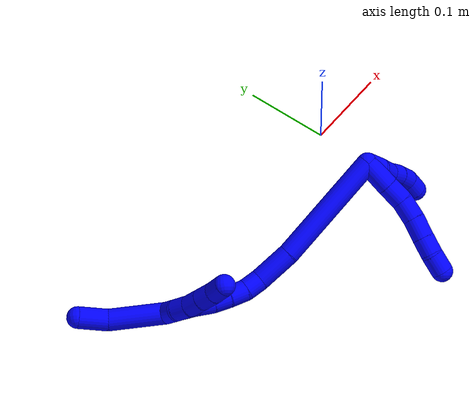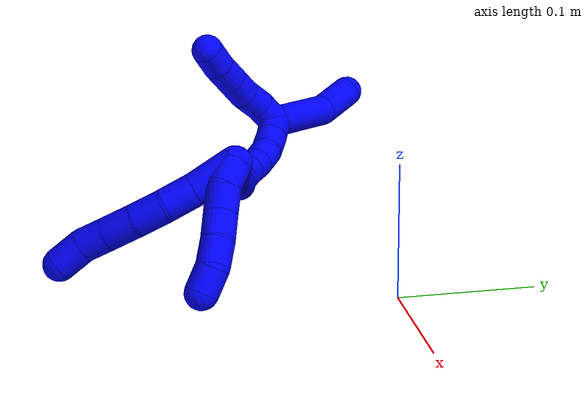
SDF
<sdf version="1.7">
 <world name="default">
  <model name="1">
   <static>0</static>
   <link name="1">
    <collision name="collision-cylinder-e_1_2_8">
     <pose>0.008142 -0.007745 0.013165 0.531779 0.489731 0.135894</pose>
     <geometry><cylinder><radius>0.0125</radius><length>0.034618</length></cylinder></geometry>
     <surface>
      <friction><ode><mu>1.16</mu><mu2>1.16</mu2><slip1>0</slip1><slip2>0</slip2></ode></friction>
      <contact><ode><kp>1e+06</kp><kd>1</kd><max_vel>0</max_vel><min_depth>0.001</min_depth></ode></contact>
     </surface>
    </collision>
    <visual name="visual-cylinder-e_1_2_8">
     <pose>0.008142 -0.007745 0.013165 0.531779 0.489731 0.135894</pose>
     <geometry><cylinder><radius>0.0125</radius><length>0.034618</length></cylinder></geometry>
     <material><ambient>0 0 1 1</ambient></material>
    </visual>
    <collision name="collision-cylinder-e_2_8_9">
     <pose>0.022457 -0.019949 0.035385 0.45761 0.548904 0.130952</pose>
     <geometry><cylinder><radius>0.0125</radius><length>0.023662</length></cylinder></geometry>
     <surface>
      <friction><ode><mu>1.16</mu><mu2>1.16</mu2><slip1>0</slip1><slip2>0</slip2></ode></friction>
      <contact><ode><kp>1e+06</kp><kd>1</kd><max_vel>0</max_vel><min_depth>0.001</min_depth></ode></contact>
     </surface>
    </collision>
    <visual name="visual-cylinder-e_2_8_9">
     <pose>0.022457 -0.019949 0.035385 0.45761 0.548904 0.130952</pose>
     <geometry><cylinder><radius>0.0125</radius><length>0.023662</length></cylinder></geometry>
     <material><ambient>0 0 1 1</ambient></material>
    </visual>
    <collision name="collision-cylinder-e_3_9_10">
     <pose>0.032946 -0.027941 0.05485 0.327095 0.37415 0.062453</pose>
     <geometry><cylinder><radius>0.0125</radius><length>0.023623</length></cylinder></geometry>
     <surface>
      <friction><ode><mu>1.16</mu><mu2>1.16</mu2><slip1>0</slip1><slip2>0</slip2></ode></friction>
      <contact><ode><kp>1e+06</kp><kd>1</kd><max_vel>0</max_vel><min_depth>0.001</min_depth></ode></contact>
     </surface>
    </collision>
    <visual name="visual-cylinder-e_3_9_10">
     <pose>0.032946 -0.027941 0.05485 0.327095 0.37415 0.062453</pose>
     <geometry><cylinder><radius>0.0125</radius><length>0.023623</length></cylinder></geometry>
     <material><ambient>0 0 1 1</ambient></material>
    </visual>
    <collision name="collision-cylinder-e_4_10_11">
     <pose>0.040623 -0.034511 0.076657 0.260489 0.277591 0.036592</pose>
     <geometry><cylinder><radius>0.0125</radius><length>0.024525</length></cylinder></geometry>
     <surface>
      <friction><ode><mu>1.16</mu><mu2>1.16</mu2><slip1>0</slip1><slip2>0</slip2></ode></friction>
      <contact><ode><kp>1e+06</kp><kd>1</kd><max_vel>0</max_vel><min_depth>0.001</min_depth></ode></contact>
     </surface>
    </collision>
    <visual name="visual-cylinder-e_4_10_11">
     <pose>0.040623 -0.034511 0.076657 0.260489 0.277591 0.036592</pose>
     <geometry><cylinder><radius>0.0125</radius><length>0.024525</length></cylinder></geometry>
     <material><ambient>0 0 1 1</ambient></material>
    </visual>
    <collision name="collision-cylinder-e_5_11_12">
     <pose>0.047111 -0.040122 0.097703 0.260688 0.303367 0.04007</pose>
     <geometry><cylinder><radius>0.0125</radius><length>0.020933</length></cylinder></geometry>
     <surface>
      <friction><ode><mu>1.16</mu><mu2>1.16</mu2><slip1>0</slip1><slip2>0</slip2></ode></friction>
      <contact><ode><kp>1e+06</kp><kd>1</kd><max_vel>0</max_vel><min_depth>0.001</min_depth></ode></contact>
     </surface>
    </collision>
    <visual name="visual-cylinder-e_5_11_12">
     <pose>0.047111 -0.040122 0.097703 0.260688 0.303367 0.04007</pose>
     <geometry><cylinder><radius>0.0125</radius><length>0.020933</length></cylinder></geometry>
     <material><ambient>0 0 1 1</ambient></material>
    </visual>
    <collision name="collision-cylinder-e_6_12_6">
     <pose>0.053522 -0.048153 0.116713 0.52787 0.29439 0.080092</pose>
     <geometry><cylinder><radius>0.0125</radius><length>0.02264</length></cylinder></geometry>
     <surface>
      <friction><ode><mu>1.16</mu><mu2>1.16</mu2><slip1>0</slip1><slip2>0</slip2></ode></friction>
      <contact><ode><kp>1e+06</kp><kd>1</kd><max_vel>0</max_vel><min_depth>0.001</min_depth></ode></contact>
     </surface>
    </collision>
    <visual name="visual-cylinder-e_6_12_6">
     <pose>0.053522 -0.048153 0.116713 0.52787 0.29439 0.080092</pose>
     <geometry><cylinder><radius>0.0125</radius><length>0.02264</length></cylinder></geometry>
     <material><ambient>0 0 1 1</ambient></material>
    </visual>
    <collision name="collision-cylinder-e_1_2_13">
     <pose>0.004697 -0.008522 0.002306 1.30657 0.488906 0.377306</pose>
     <geometry><cylinder><radius>0.0125</radius><length>0.02</length></cylinder></geometry>
     <surface>
      <friction><ode><mu>1.16</mu><mu2>1.16</mu2><slip1>0</slip1><slip2>0</slip2></ode></friction>
      <contact><ode><kp>1e+06</kp><kd>1</kd><max_vel>0</max_vel><min_depth>0.001</min_depth></ode></contact>
     </surface>
    </collision>
    <visual name="visual-cylinder-e_1_2_13">
     <pose>0.004697 -0.008522 0.002306 1.30657 0.488906 0.377306</pose>
     <geometry><cylinder><radius>0.0125</radius><length>0.02</length></cylinder></geometry>
     <material><ambient>0 0 1 1</ambient></material>
    </visual>
    <collision name="collision-cylinder-e_2_13_14">
     <pose>0.011423 -0.026778 0.00568 1.46144 0.204358 0.183273</pose>
     <geometry><cylinder><radius>0.0125</radius><length>0.02</length></cylinder></geometry>
     <surface>
      <friction><ode><mu>1.16</mu><mu2>1.16</mu2><slip1>0</slip1><slip2>0</slip2></ode></friction>
      <contact><ode><kp>1e+06</kp><kd>1</kd><max_vel>0</max_vel><min_depth>0.001</min_depth></ode></contact>
     </surface>
    </collision>
    <visual name="visual-cylinder-e_2_13_14">
     <pose>0.011423 -0.026778 0.00568 1.46144 0.204358 0.183273</pose>
     <geometry><cylinder><radius>0.0125</radius><length>0.02</length></cylinder></geometry>
     <material><ambient>0 0 1 1</ambient></material>
    </visual>
    <collision name="collision-cylinder-e_3_14_15">
     <pose>0.016381 -0.046072 0.006686 1.5773 0.297266 0.299178</pose>
     <geometry><cylinder><radius>0.0125</radius><length>0.02</length></cylinder></geometry>
     <surface>
      <friction><ode><mu>1.16</mu><mu2>1.16</mu2><slip1>0</slip1><slip2>0</slip2></ode></friction>
      <contact><ode><kp>1e+06</kp><kd>1</kd><max_vel>0</max_vel><min_depth>0.001</min_depth></ode></contact>
     </surface>
    </collision>
    <visual name="visual-cylinder-e_3_14_15">
     <pose>0.016381 -0.046072 0.006686 1.5773 0.297266 0.299178</pose>
     <geometry><cylinder><radius>0.0125</radius><length>0.02</length></cylinder></geometry>
     <material><ambient>0 0 1 1</ambient></material>
    </visual>
    <collision name="collision-cylinder-e_4_15_16">
     <pose>0.021991 -0.065181 0.007912 1.43673 0.271403 0.237597</pose>
     <geometry><cylinder><radius>0.0125</radius><length>0.02</length></cylinder></geometry>
     <surface>
      <friction><ode><mu>1.16</mu><mu2>1.16</mu2><slip1>0</slip1><slip2>0</slip2></ode></friction>
      <contact><ode><kp>1e+06</kp><kd>1</kd><max_vel>0</max_vel><min_depth>0.001</min_depth></ode></contact>
     </surface>
    </collision>
    <visual name="visual-cylinder-e_4_15_16">
     <pose>0.021991 -0.065181 0.007912 1.43673 0.271403 0.237597</pose>
     <geometry><cylinder><radius>0.0125</radius><length>0.02</length></cylinder></geometry>
     <material><ambient>0 0 1 1</ambient></material>
    </visual>
    <collision name="collision-cylinder-e_5_16_5">
     <pose>0.026846 -0.08337 0.013738 1.08727 0.21915 0.132787</pose>
     <geometry><cylinder><radius>0.0125</radius><length>0.02</length></cylinder></geometry>
     <surface>
      <friction><ode><mu>1.16</mu><mu2>1.16</mu2><slip1>0</slip1><slip2>0</slip2></ode></friction>
      <contact><ode><kp>1e+06</kp><kd>1</kd><max_vel>0</max_vel><min_depth>0.001</min_depth></ode></contact>
     </surface>
    </collision>
    <visual name="visual-cylinder-e_5_16_5">
     <pose>0.026846 -0.08337 0.013738 1.08727 0.21915 0.132787</pose>
     <geometry><cylinder><radius>0.0125</radius><length>0.02</length></cylinder></geometry>
     <material><ambient>0 0 1 1</ambient></material>
    </visual>
    <collision name="collision-cylinder-e_1_2_17">
     <pose>-0.05036 0.006671 0.044685 -0.148199 -0.839562 0.06624</pose>
     <geometry><cylinder><radius>0.0125</radius><length>0.135314</length></cylinder></geometry>
     <surface>
      <friction><ode><mu>1.16</mu><mu2>1.16</mu2><slip1>0</slip1><slip2>0</slip2></ode></friction>
      <contact><ode><kp>1e+06</kp><kd>1</kd><max_vel>0</max_vel><min_depth>0.001</min_depth></ode></contact>
     </surface>
    </collision>
    <visual name="visual-cylinder-e_1_2_17">
     <pose>-0.05036 0.006671 0.044685 -0.148199 -0.839562 0.06624</pose>
     <geometry><cylinder><radius>0.0125</radius><length>0.135314</length></cylinder></geometry>
     <material><ambient>0 0 1 1</ambient></material>
    </visual>
    <collision name="collision-cylinder-e_2_17_18">
     <pose>-0.118841 0.015495 0.101624 -0.173911 -0.969129 0.091718</pose>
     <geometry><cylinder><radius>0.0125</radius><length>0.043961</length></cylinder></geometry>
     <surface>
      <friction><ode><mu>1.16</mu><mu2>1.16</mu2><slip1>0</slip1><slip2>0</slip2></ode></friction>
      <contact><ode><kp>1e+06</kp><kd>1</kd><max_vel>0</max_vel><min_depth>0.001</min_depth></ode></contact>
     </surface>
    </collision>
    <visual name="visual-cylinder-e_2_17_18">
     <pose>-0.118841 0.015495 0.101624 -0.173911 -0.969129 0.091718</pose>
     <geometry><cylinder><radius>0.0125</radius><length>0.043961</length></cylinder></geometry>
     <material><ambient>0 0 1 1</ambient></material>
    </visual>
    <collision name="collision-cylinder-e_3_18_19">
     <pose>-0.144785 0.021748 0.119223 -0.654344 -0.859893 0.308762</pose>
     <geometry><cylinder><radius>0.0125</radius><length>0.02065</length></cylinder></geometry>
     <surface>
      <friction><ode><mu>1.16</mu><mu2>1.16</mu2><slip1>0</slip1><slip2>0</slip2></ode></friction>
      <contact><ode><kp>1e+06</kp><kd>1</kd><max_vel>0</max_vel><min_depth>0.001</min_depth></ode></contact>
     </surface>
    </collision>
    <visual name="visual-cylinder-e_3_18_19">
     <pose>-0.144785 0.021748 0.119223 -0.654344 -0.859893 0.308762</pose>
     <geometry><cylinder><radius>0.0125</radius><length>0.02065</length></cylinder></geometry>
     <material><ambient>0 0 1 1</ambient></material>
    </visual>
    <collision name="collision-cylinder-e_4_19_20">
     <pose>-0.161029 0.030395 0.127589 -0.984343 -0.995697 0.567135</pose>
     <geometry><cylinder><radius>0.0125</radius><length>0.020067</length></cylinder></geometry>
     <surface>
      <friction><ode><mu>1.16</mu><mu2>1.16</mu2><slip1>0</slip1><slip2>0</slip2></ode></friction>
      <contact><ode><kp>1e+06</kp><kd>1</kd><max_vel>0</max_vel><min_depth>0.001</min_depth></ode></contact>
     </surface>
    </collision>
    <visual name="visual-cylinder-e_4_19_20">
     <pose>-0.161029 0.030395 0.127589 -0.984343 -0.995697 0.567135</pose>
     <geometry><cylinder><radius>0.0125</radius><length>0.020067</length></cylinder></geometry>
     <material><ambient>0 0 1 1</ambient></material>
    </visual>
    <collision name="collision-cylinder-e_5_20_21">
     <pose>-0.178218 0.039121 0.132991 -1.053 -1.06896 0.662746</pose>
     <geometry><cylinder><radius>0.0125</radius><length>0.020006</length></cylinder></geometry>
     <surface>
      <friction><ode><mu>1.16</mu><mu2>1.16</mu2><slip1>0</slip1><slip2>0</slip2></ode></friction>
      <contact><ode><kp>1e+06</kp><kd>1</kd><max_vel>0</max_vel><min_depth>0.001</min_depth></ode></contact>
     </surface>
    </collision>
    <visual name="visual-cylinder-e_5_20_21">
     <pose>-0.178218 0.039121 0.132991 -1.053 -1.06896 0.662746</pose>
     <geometry><cylinder><radius>0.0125</radius><length>0.020006</length></cylinder></geometry>
     <material><ambient>0 0 1 1</ambient></material>
    </visual>
    <collision name="collision-cylinder-e_6_21_22">
     <pose>-0.195034 0.049125 0.136546 -1.37195 -0.934903 0.783659</pose>
     <geometry><cylinder><radius>0.0125</radius><length>0.020002</length></cylinder></geometry>
     <surface>
      <friction><ode><mu>1.16</mu><mu2>1.16</mu2><slip1>0</slip1><slip2>0</slip2></ode></friction>
      <contact><ode><kp>1e+06</kp><kd>1</kd><max_vel>0</max_vel><min_depth>0.001</min_depth></ode></contact>
     </surface>
    </collision>
    <visual name="visual-cylinder-e_6_21_22">
     <pose>-0.195034 0.049125 0.136546 -1.37195 -0.934903 0.783659</pose>
     <geometry><cylinder><radius>0.0125</radius><length>0.020002</length></cylinder></geometry>
     <material><ambient>0 0 1 1</ambient></material>
    </visual>
    <collision name="collision-cylinder-e_7_22_23">
     <pose>-0.209868 0.061987 0.13981 -1.28203 -0.746102 0.568229</pose>
     <geometry><cylinder><radius>0.0125</radius><length>0.020001</length></cylinder></geometry>
     <surface>
      <friction><ode><mu>1.16</mu><mu2>1.16</mu2><slip1>0</slip1><slip2>0</slip2></ode></friction>
      <contact><ode><kp>1e+06</kp><kd>1</kd><max_vel>0</max_vel><min_depth>0.001</min_depth></ode></contact>
     </surface>
    </collision>
    <visual name="visual-cylinder-e_7_22_23">
     <pose>-0.209868 0.061987 0.13981 -1.28203 -0.746102 0.568229</pose>
     <geometry><cylinder><radius>0.0125</radius><length>0.020001</length></cylinder></geometry>
     <material><ambient>0 0 1 1</ambient></material>
    </visual>
    <collision name="collision-cylinder-e_8_23_1">
     <pose>-0.222887 0.076489 0.144246 -1.26639 -0.672635 0.502384</pose>
     <geometry><cylinder><radius>0.0125</radius><length>0.02</length></cylinder></geometry>
     <surface>
      <friction><ode><mu>1.16</mu><mu2>1.16</mu2><slip1>0</slip1><slip2>0</slip2></ode></friction>
      <contact><ode><kp>1e+06</kp><kd>1</kd><max_vel>0</max_vel><min_depth>0.001</min_depth></ode></contact>
     </surface>
    </collision>
    <visual name="visual-cylinder-e_8_23_1">
     <pose>-0.222887 0.076489 0.144246 -1.26639 -0.672635 0.502384</pose>
     <geometry><cylinder><radius>0.0125</radius><length>0.02</length></cylinder></geometry>
     <material><ambient>0 0 1 1</ambient></material>
    </visual>
    <collision name="collision-cylinder-e_1_1_24">
     <pose>-0.221178 0.089996 0.147246 -1.46277 0.917205 -0.83414</pose>
     <geometry><cylinder><radius>0.0125</radius><length>0.02</length></cylinder></geometry>
     <surface>
      <friction><ode><mu>1.16</mu><mu2>1.16</mu2><slip1>0</slip1><slip2>0</slip2></ode></friction>
      <contact><ode><kp>1e+06</kp><kd>1</kd><max_vel>0</max_vel><min_depth>0.001</min_depth></ode></contact>
     </surface>
    </collision>
    <visual name="visual-cylinder-e_1_1_24">
     <pose>-0.221178 0.089996 0.147246 -1.46277 0.917205 -0.83414</pose>
     <geometry><cylinder><radius>0.0125</radius><length>0.02</length></cylinder></geometry>
     <material><ambient>0 0 1 1</ambient></material>
    </visual>
    <collision name="collision-cylinder-e_2_24_25">
     <pose>-0.20401 0.099888 0.14778 -1.60252 1.17568 -1.20514</pose>
     <geometry><cylinder><radius>0.0125</radius><length>0.02</length></cylinder></geometry>
     <surface>
      <friction><ode><mu>1.16</mu><mu2>1.16</mu2><slip1>0</slip1><slip2>0</slip2></ode></friction>
      <contact><ode><kp>1e+06</kp><kd>1</kd><max_vel>0</max_vel><min_depth>0.001</min_depth></ode></contact>
     </surface>
    </collision>
    <visual name="visual-cylinder-e_2_24_25">
     <pose>-0.20401 0.099888 0.14778 -1.60252 1.17568 -1.20514</pose>
     <geometry><cylinder><radius>0.0125</radius><length>0.02</length></cylinder></geometry>
     <material><ambient>0 0 1 1</ambient></material>
    </visual>
    <collision name="collision-cylinder-e_3_25_26">
     <pose>-0.185964 0.108213 0.146169 -1.89167 1.07939 -1.38591</pose>
     <geometry><cylinder><radius>0.0125</radius><length>0.02</length></cylinder></geometry>
     <surface>
      <friction><ode><mu>1.16</mu><mu2>1.16</mu2><slip1>0</slip1><slip2>0</slip2></ode></friction>
      <contact><ode><kp>1e+06</kp><kd>1</kd><max_vel>0</max_vel><min_depth>0.001</min_depth></ode></contact>
     </surface>
    </collision>
    <visual name="visual-cylinder-e_3_25_26">
     <pose>-0.185964 0.108213 0.146169 -1.89167 1.07939 -1.38591</pose>
     <geometry><cylinder><radius>0.0125</radius><length>0.02</length></cylinder></geometry>
     <material><ambient>0 0 1 1</ambient></material>
    </visual>
    <collision name="collision-cylinder-e_4_26_27">
     <pose>-0.168254 0.116975 0.14308 -1.92839 1.09584 -1.44272</pose>
     <geometry><cylinder><radius>0.0125</radius><length>0.02</length></cylinder></geometry>
     <surface>
      <friction><ode><mu>1.16</mu><mu2>1.16</mu2><slip1>0</slip1><slip2>0</slip2></ode></friction>
      <contact><ode><kp>1e+06</kp><kd>1</kd><max_vel>0</max_vel><min_depth>0.001</min_depth></ode></contact>
     </surface>
    </collision>
    <visual name="visual-cylinder-e_4_26_27">
     <pose>-0.168254 0.116975 0.14308 -1.92839 1.09584 -1.44272</pose>
     <geometry><cylinder><radius>0.0125</radius><length>0.02</length></cylinder></geometry>
     <material><ambient>0 0 1 1</ambient></material>
    </visual>
    <collision name="collision-cylinder-e_5_27_4">
     <pose>-0.151156 0.126661 0.13961 -1.90404 0.962269 -1.26527</pose>
     <geometry><cylinder><radius>0.0125</radius><length>0.02</length></cylinder></geometry>
     <surface>
      <friction><ode><mu>1.16</mu><mu2>1.16</mu2><slip1>0</slip1><slip2>0</slip2></ode></friction>
      <contact><ode><kp>1e+06</kp><kd>1</kd><max_vel>0</max_vel><min_depth>0.001</min_depth></ode></contact>
     </surface>
    </collision>
    <visual name="visual-cylinder-e_5_27_4">
     <pose>-0.151156 0.126661 0.13961 -1.90404 0.962269 -1.26527</pose>
     <geometry><cylinder><radius>0.0125</radius><length>0.02</length></cylinder></geometry>
     <material><ambient>0 0 1 1</ambient></material>
    </visual>
    <collision name="collision-cylinder-e_1_1_28">
     <pose>-0.260824 0.09193 0.146333 -1.60304 -1.32413 1.35552</pose>
     <geometry><cylinder><radius>0.0125</radius><length>0.065392</length></cylinder></geometry>
     <surface>
      <friction><ode><mu>1.16</mu><mu2>1.16</mu2><slip1>0</slip1><slip2>0</slip2></ode></friction>
      <contact><ode><kp>1e+06</kp><kd>1</kd><max_vel>0</max_vel><min_depth>0.001</min_depth></ode></contact>
     </surface>
    </collision>
    <visual name="visual-cylinder-e_1_1_28">
     <pose>-0.260824 0.09193 0.146333 -1.60304 -1.32413 1.35552</pose>
     <geometry><cylinder><radius>0.0125</radius><length>0.065392</length></cylinder></geometry>
     <material><ambient>0 0 1 1</ambient></material>
    </visual>
    <collision name="collision-cylinder-e_2_28_3">
     <pose>-0.307065 0.108931 0.143473 -1.85171 -0.997201 1.25306</pose>
     <geometry><cylinder><radius>0.0125</radius><length>0.034608</length></cylinder></geometry>
     <surface>
      <friction><ode><mu>1.16</mu><mu2>1.16</mu2><slip1>0</slip1><slip2>0</slip2></ode></friction>
      <contact><ode><kp>1e+06</kp><kd>1</kd><max_vel>0</max_vel><min_depth>0.001</min_depth></ode></contact>
     </surface>
    </collision>
    <visual name="visual-cylinder-e_2_28_3">
     <pose>-0.307065 0.108931 0.143473 -1.85171 -0.997201 1.25306</pose>
     <geometry><cylinder><radius>0.0125</radius><length>0.034608</length></cylinder></geometry>
     <material><ambient>0 0 1 1</ambient></material>
    </visual>
    <collision name="collision-sphere-3">
     <pose>-0.321599 0.117954 0.140869 0 -0 0</pose>
     <geometry><sphere><radius>0.0125</radius></sphere></geometry>
     <surface>
      <friction><ode><mu>1.16</mu><mu2>1.16</mu2><slip1>0</slip1><slip2>0</slip2></ode></friction>
      <contact><ode><kp>1e+06</kp><kd>1</kd><max_vel>0</max_vel><min_depth>0.001</min_depth></ode></contact>
     </surface>
    </collision>
    <visual name="visual-sphere-3">
     <pose>-0.321599 0.117954 0.140869 0 -0 0</pose>
     <geometry><sphere><radius>0.0125</radius></sphere></geometry>
     <material><ambient>0 0 1 1</ambient></material>
    </visual>
    <collision name="collision-sphere-28">
     <pose>-0.29253 0.099909 0.146076 0 -0 0</pose>
     <geometry><sphere><radius>0.0125</radius></sphere></geometry>
     <surface>
      <friction><ode><mu>1.16</mu><mu2>1.16</mu2><slip1>0</slip1><slip2>0</slip2></ode></friction>
      <contact><ode><kp>1e+06</kp><kd>1</kd><max_vel>0</max_vel><min_depth>0.001</min_depth></ode></contact>
     </surface>
    </collision>
    <visual name="visual-sphere-28">
     <pose>-0.29253 0.099909 0.146076 0 -0 0</pose>
     <geometry><sphere><radius>0.0125</radius></sphere></geometry>
     <material><ambient>0 0 1 1</ambient></material>
    </visual>
    <collision name="collision-sphere-4">
     <pose>-0.142951 0.132063 0.13774 0 -0 0</pose>
     <geometry><sphere><radius>0.0125</radius></sphere></geometry>
     <surface>
      <friction><ode><mu>1.16</mu><mu2>1.16</mu2><slip1>0</slip1><slip2>0</slip2></ode></friction>
      <contact><ode><kp>1e+06</kp><kd>1</kd><max_vel>0</max_vel><min_depth>0.001</min_depth></ode></contact>
     </surface>
    </collision>
    <visual name="visual-sphere-4">
     <pose>-0.142951 0.132063 0.13774 0 -0 0</pose>
     <geometry><sphere><radius>0.0125</radius></sphere></geometry>
     <material><ambient>0 0 1 1</ambient></material>
    </visual>
    <collision name="collision-sphere-27">
     <pose>-0.159361 0.121258 0.14148 0 -0 0</pose>
     <geometry><sphere><radius>0.0125</radius></sphere></geometry>
     <surface>
      <friction><ode><mu>1.16</mu><mu2>1.16</mu2><slip1>0</slip1><slip2>0</slip2></ode></friction>
      <contact><ode><kp>1e+06</kp><kd>1</kd><max_vel>0</max_vel><min_depth>0.001</min_depth></ode></contact>
     </surface>
    </collision>
    <visual name="visual-sphere-27">
     <pose>-0.159361 0.121258 0.14148 0 -0 0</pose>
     <geometry><sphere><radius>0.0125</radius></sphere></geometry>
     <material><ambient>0 0 1 1</ambient></material>
    </visual>
    <collision name="collision-sphere-26">
     <pose>-0.177147 0.112691 0.144681 0 -0 0</pose>
     <geometry><sphere><radius>0.0125</radius></sphere></geometry>
     <surface>
      <friction><ode><mu>1.16</mu><mu2>1.16</mu2><slip1>0</slip1><slip2>0</slip2></ode></friction>
      <contact><ode><kp>1e+06</kp><kd>1</kd><max_vel>0</max_vel><min_depth>0.001</min_depth></ode></contact>
     </surface>
    </collision>
    <visual name="visual-sphere-26">
     <pose>-0.177147 0.112691 0.144681 0 -0 0</pose>
     <geometry><sphere><radius>0.0125</radius></sphere></geometry>
     <material><ambient>0 0 1 1</ambient></material>
    </visual>
    <collision name="collision-sphere-25">
     <pose>-0.19478 0.103735 0.147657 0 -0 0</pose>
     <geometry><sphere><radius>0.0125</radius></sphere></geometry>
     <surface>
      <friction><ode><mu>1.16</mu><mu2>1.16</mu2><slip1>0</slip1><slip2>0</slip2></ode></friction>
      <contact><ode><kp>1e+06</kp><kd>1</kd><max_vel>0</max_vel><min_depth>0.001</min_depth></ode></contact>
     </surface>
    </collision>
    <visual name="visual-sphere-25">
     <pose>-0.19478 0.103735 0.147657 0 -0 0</pose>
     <geometry><sphere><radius>0.0125</radius></sphere></geometry>
     <material><ambient>0 0 1 1</ambient></material>
    </visual>
    <collision name="collision-sphere-24">
     <pose>-0.213239 0.096041 0.147902 0 -0 0</pose>
     <geometry><sphere><radius>0.0125</radius></sphere></geometry>
     <surface>
      <friction><ode><mu>1.16</mu><mu2>1.16</mu2><slip1>0</slip1><slip2>0</slip2></ode></friction>
      <contact><ode><kp>1e+06</kp><kd>1</kd><max_vel>0</max_vel><min_depth>0.001</min_depth></ode></contact>
     </surface>
    </collision>
    <visual name="visual-sphere-24">
     <pose>-0.213239 0.096041 0.147902 0 -0 0</pose>
     <geometry><sphere><radius>0.0125</radius></sphere></geometry>
     <material><ambient>0 0 1 1</ambient></material>
    </visual>
    <collision name="collision-sphere-1">
     <pose>-0.229118 0.083951 0.146591 0 -0 0</pose>
     <geometry><sphere><radius>0.0125</radius></sphere></geometry>
     <surface>
      <friction><ode><mu>1.16</mu><mu2>1.16</mu2><slip1>0</slip1><slip2>0</slip2></ode></friction>
      <contact><ode><kp>1e+06</kp><kd>1</kd><max_vel>0</max_vel><min_depth>0.001</min_depth></ode></contact>
     </surface>
    </collision>
    <visual name="visual-sphere-1">
     <pose>-0.229118 0.083951 0.146591 0 -0 0</pose>
     <geometry><sphere><radius>0.0125</radius></sphere></geometry>
     <material><ambient>0 0 1 1</ambient></material>
    </visual>
    <collision name="collision-sphere-23">
     <pose>-0.216657 0.069026 0.141902 0 -0 0</pose>
     <geometry><sphere><radius>0.0125</radius></sphere></geometry>
     <surface>
      <friction><ode><mu>1.16</mu><mu2>1.16</mu2><slip1>0</slip1><slip2>0</slip2></ode></friction>
      <contact><ode><kp>1e+06</kp><kd>1</kd><max_vel>0</max_vel><min_depth>0.001</min_depth></ode></contact>
     </surface>
    </collision>
    <visual name="visual-sphere-23">
     <pose>-0.216657 0.069026 0.141902 0 -0 0</pose>
     <geometry><sphere><radius>0.0125</radius></sphere></geometry>
     <material><ambient>0 0 1 1</ambient></material>
    </visual>
    <collision name="collision-sphere-22">
     <pose>-0.20308 0.054947 0.137719 0 -0 0</pose>
     <geometry><sphere><radius>0.0125</radius></sphere></geometry>
     <surface>
      <friction><ode><mu>1.16</mu><mu2>1.16</mu2><slip1>0</slip1><slip2>0</slip2></ode></friction>
      <contact><ode><kp>1e+06</kp><kd>1</kd><max_vel>0</max_vel><min_depth>0.001</min_depth></ode></contact>
     </surface>
    </collision>
    <visual name="visual-sphere-22">
     <pose>-0.20308 0.054947 0.137719 0 -0 0</pose>
     <geometry><sphere><radius>0.0125</radius></sphere></geometry>
     <material><ambient>0 0 1 1</ambient></material>
    </visual>
    <collision name="collision-sphere-21">
     <pose>-0.186988 0.043302 0.135373 0 -0 0</pose>
     <geometry><sphere><radius>0.0125</radius></sphere></geometry>
     <surface>
      <friction><ode><mu>1.16</mu><mu2>1.16</mu2><slip1>0</slip1><slip2>0</slip2></ode></friction>
      <contact><ode><kp>1e+06</kp><kd>1</kd><max_vel>0</max_vel><min_depth>0.001</min_depth></ode></contact>
     </surface>
    </collision>
    <visual name="visual-sphere-21">
     <pose>-0.186988 0.043302 0.135373 0 -0 0</pose>
     <geometry><sphere><radius>0.0125</radius></sphere></geometry>
     <material><ambient>0 0 1 1</ambient></material>
    </visual>
    <collision name="collision-sphere-12">
     <pose>0.050237 -0.042697 0.107354 0 -0 0</pose>
     <geometry><sphere><radius>0.0125</radius></sphere></geometry>
     <surface>
      <friction><ode><mu>1.16</mu><mu2>1.16</mu2><slip1>0</slip1><slip2>0</slip2></ode></friction>
      <contact><ode><kp>1e+06</kp><kd>1</kd><max_vel>0</max_vel><min_depth>0.001</min_depth></ode></contact>
     </surface>
    </collision>
    <visual name="visual-sphere-12">
     <pose>0.050237 -0.042697 0.107354 0 -0 0</pose>
     <geometry><sphere><radius>0.0125</radius></sphere></geometry>
     <material><ambient>0 0 1 1</ambient></material>
    </visual>
    <collision name="collision-sphere-11">
     <pose>0.043984 -0.037548 0.088053 0 -0 0</pose>
     <geometry><sphere><radius>0.0125</radius></sphere></geometry>
     <surface>
      <friction><ode><mu>1.16</mu><mu2>1.16</mu2><slip1>0</slip1><slip2>0</slip2></ode></friction>
      <contact><ode><kp>1e+06</kp><kd>1</kd><max_vel>0</max_vel><min_depth>0.001</min_depth></ode></contact>
     </surface>
    </collision>
    <visual name="visual-sphere-11">
     <pose>0.043984 -0.037548 0.088053 0 -0 0</pose>
     <geometry><sphere><radius>0.0125</radius></sphere></geometry>
     <material><ambient>0 0 1 1</ambient></material>
    </visual>
    <collision name="collision-sphere-10">
     <pose>0.037263 -0.031473 0.065262 0 -0 0</pose>
     <geometry><sphere><radius>0.0125</radius></sphere></geometry>
     <surface>
      <friction><ode><mu>1.16</mu><mu2>1.16</mu2><slip1>0</slip1><slip2>0</slip2></ode></friction>
      <contact><ode><kp>1e+06</kp><kd>1</kd><max_vel>0</max_vel><min_depth>0.001</min_depth></ode></contact>
     </surface>
    </collision>
    <visual name="visual-sphere-10">
     <pose>0.037263 -0.031473 0.065262 0 -0 0</pose>
     <geometry><sphere><radius>0.0125</radius></sphere></geometry>
     <material><ambient>0 0 1 1</ambient></material>
    </visual>
    <collision name="collision-sphere-9">
     <pose>0.028629 -0.024408 0.044439 0 -0 0</pose>
     <geometry><sphere><radius>0.0125</radius></sphere></geometry>
     <surface>
      <friction><ode><mu>1.16</mu><mu2>1.16</mu2><slip1>0</slip1><slip2>0</slip2></ode></friction>
      <contact><ode><kp>1e+06</kp><kd>1</kd><max_vel>0</max_vel><min_depth>0.001</min_depth></ode></contact>
     </surface>
    </collision>
    <visual name="visual-sphere-9">
     <pose>0.028629 -0.024408 0.044439 0 -0 0</pose>
     <geometry><sphere><radius>0.0125</radius></sphere></geometry>
     <material><ambient>0 0 1 1</ambient></material>
    </visual>
    <collision name="collision-sphere-2">
     <geometry><sphere><radius>0.0125</radius></sphere></geometry>
     <surface>
      <friction><ode><mu>1.16</mu><mu2>1.16</mu2><slip1>0</slip1><slip2>0</slip2></ode></friction>
      <contact><ode><kp>1e+06</kp><kd>1</kd><max_vel>0</max_vel><min_depth>0.001</min_depth></ode></contact>
     </surface>
    </collision>
    <visual name="visual-sphere-2">
     <geometry><sphere><radius>0.0125</radius></sphere></geometry>
     <material><ambient>0 0 1 1</ambient></material>
    </visual>
    <collision name="collision-sphere-19">
     <pose>-0.152609 0.025849 0.124569 0 -0 0</pose>
     <geometry><sphere><radius>0.0125</radius></sphere></geometry>
     <surface>
      <friction><ode><mu>1.16</mu><mu2>1.16</mu2><slip1>0</slip1><slip2>0</slip2></ode></friction>
      <contact><ode><kp>1e+06</kp><kd>1</kd><max_vel>0</max_vel><min_depth>0.001</min_depth></ode></contact>
     </surface>
    </collision>
    <visual name="visual-sphere-19">
     <pose>-0.152609 0.025849 0.124569 0 -0 0</pose>
     <geometry><sphere><radius>0.0125</radius></sphere></geometry>
     <material><ambient>0 0 1 1</ambient></material>
    </visual>
    <collision name="collision-sphere-8">
     <pose>0.016284 -0.01549 0.02633 0 -0 0</pose>
     <geometry><sphere><radius>0.0125</radius></sphere></geometry>
     <surface>
      <friction><ode><mu>1.16</mu><mu2>1.16</mu2><slip1>0</slip1><slip2>0</slip2></ode></friction>
      <contact><ode><kp>1e+06</kp><kd>1</kd><max_vel>0</max_vel><min_depth>0.001</min_depth></ode></contact>
     </surface>
    </collision>
    <visual name="visual-sphere-8">
     <pose>0.016284 -0.01549 0.02633 0 -0 0</pose>
     <geometry><sphere><radius>0.0125</radius></sphere></geometry>
     <material><ambient>0 0 1 1</ambient></material>
    </visual>
    <collision name="collision-sphere-6">
     <pose>0.056806 -0.05361 0.126071 0 -0 0</pose>
     <geometry><sphere><radius>0.0125</radius></sphere></geometry>
     <surface>
      <friction><ode><mu>1.16</mu><mu2>1.16</mu2><slip1>0</slip1><slip2>0</slip2></ode></friction>
      <contact><ode><kp>1e+06</kp><kd>1</kd><max_vel>0</max_vel><min_depth>0.001</min_depth></ode></contact>
     </surface>
    </collision>
    <visual name="visual-sphere-6">
     <pose>0.056806 -0.05361 0.126071 0 -0 0</pose>
     <geometry><sphere><radius>0.0125</radius></sphere></geometry>
     <material><ambient>0 0 1 1</ambient></material>
    </visual>
    <collision name="collision-sphere-13">
     <pose>0.009393 -0.017044 0.004611 0 -0 0</pose>
     <geometry><sphere><radius>0.0125</radius></sphere></geometry>
     <surface>
      <friction><ode><mu>1.16</mu><mu2>1.16</mu2><slip1>0</slip1><slip2>0</slip2></ode></friction>
      <contact><ode><kp>1e+06</kp><kd>1</kd><max_vel>0</max_vel><min_depth>0.001</min_depth></ode></contact>
     </surface>
    </collision>
    <visual name="visual-sphere-13">
     <pose>0.009393 -0.017044 0.004611 0 -0 0</pose>
     <geometry><sphere><radius>0.0125</radius></sphere></geometry>
     <material><ambient>0 0 1 1</ambient></material>
    </visual>
    <collision name="collision-sphere-14">
     <pose>0.013452 -0.036511 0.006749 0 -0 0</pose>
     <geometry><sphere><radius>0.0125</radius></sphere></geometry>
     <surface>
      <friction><ode><mu>1.16</mu><mu2>1.16</mu2><slip1>0</slip1><slip2>0</slip2></ode></friction>
      <contact><ode><kp>1e+06</kp><kd>1</kd><max_vel>0</max_vel><min_depth>0.001</min_depth></ode></contact>
     </surface>
    </collision>
    <visual name="visual-sphere-14">
     <pose>0.013452 -0.036511 0.006749 0 -0 0</pose>
     <geometry><sphere><radius>0.0125</radius></sphere></geometry>
     <material><ambient>0 0 1 1</ambient></material>
    </visual>
    <collision name="collision-sphere-15">
     <pose>0.01931 -0.055633 0.006624 0 -0 0</pose>
     <geometry><sphere><radius>0.0125</radius></sphere></geometry>
     <surface>
      <friction><ode><mu>1.16</mu><mu2>1.16</mu2><slip1>0</slip1><slip2>0</slip2></ode></friction>
      <contact><ode><kp>1e+06</kp><kd>1</kd><max_vel>0</max_vel><min_depth>0.001</min_depth></ode></contact>
     </surface>
    </collision>
    <visual name="visual-sphere-15">
     <pose>0.01931 -0.055633 0.006624 0 -0 0</pose>
     <geometry><sphere><radius>0.0125</radius></sphere></geometry>
     <material><ambient>0 0 1 1</ambient></material>
    </visual>
    <collision name="collision-sphere-16">
     <pose>0.024672 -0.074728 0.0092 0 -0 0</pose>
     <geometry><sphere><radius>0.0125</radius></sphere></geometry>
     <surface>
      <friction><ode><mu>1.16</mu><mu2>1.16</mu2><slip1>0</slip1><slip2>0</slip2></ode></friction>
      <contact><ode><kp>1e+06</kp><kd>1</kd><max_vel>0</max_vel><min_depth>0.001</min_depth></ode></contact>
     </surface>
    </collision>
    <visual name="visual-sphere-16">
     <pose>0.024672 -0.074728 0.0092 0 -0 0</pose>
     <geometry><sphere><radius>0.0125</radius></sphere></geometry>
     <material><ambient>0 0 1 1</ambient></material>
    </visual>
    <collision name="collision-sphere-5">
     <pose>0.02902 -0.092012 0.018276 0 -0 0</pose>
     <geometry><sphere><radius>0.0125</radius></sphere></geometry>
     <surface>
      <friction><ode><mu>1.16</mu><mu2>1.16</mu2><slip1>0</slip1><slip2>0</slip2></ode></friction>
      <contact><ode><kp>1e+06</kp><kd>1</kd><max_vel>0</max_vel><min_depth>0.001</min_depth></ode></contact>
     </surface>
    </collision>
    <visual name="visual-sphere-5">
     <pose>0.02902 -0.092012 0.018276 0 -0 0</pose>
     <geometry><sphere><radius>0.0125</radius></sphere></geometry>
     <material><ambient>0 0 1 1</ambient></material>
    </visual>
    <collision name="collision-sphere-17">
     <pose>-0.100721 0.013342 0.08937 0 -0 0</pose>
     <geometry><sphere><radius>0.0125</radius></sphere></geometry>
     <surface>
      <friction><ode><mu>1.16</mu><mu2>1.16</mu2><slip1>0</slip1><slip2>0</slip2></ode></friction>
      <contact><ode><kp>1e+06</kp><kd>1</kd><max_vel>0</max_vel><min_depth>0.001</min_depth></ode></contact>
     </surface>
    </collision>
    <visual name="visual-sphere-17">
     <pose>-0.100721 0.013342 0.08937 0 -0 0</pose>
     <geometry><sphere><radius>0.0125</radius></sphere></geometry>
     <material><ambient>0 0 1 1</ambient></material>
    </visual>
    <collision name="collision-sphere-18">
     <pose>-0.136962 0.017648 0.113878 0 -0 0</pose>
     <geometry><sphere><radius>0.0125</radius></sphere></geometry>
     <surface>
      <friction><ode><mu>1.16</mu><mu2>1.16</mu2><slip1>0</slip1><slip2>0</slip2></ode></friction>
      <contact><ode><kp>1e+06</kp><kd>1</kd><max_vel>0</max_vel><min_depth>0.001</min_depth></ode></contact>
     </surface>
    </collision>
    <visual name="visual-sphere-18">
     <pose>-0.136962 0.017648 0.113878 0 -0 0</pose>
     <geometry><sphere><radius>0.0125</radius></sphere></geometry>
     <material><ambient>0 0 1 1</ambient></material>
    </visual>
    <collision name="collision-sphere-20">
     <pose>-0.169449 0.03494 0.130609 0 -0 0</pose>
     <geometry><sphere><radius>0.0125</radius></sphere></geometry>
     <surface>
      <friction><ode><mu>1.16</mu><mu2>1.16</mu2><slip1>0</slip1><slip2>0</slip2></ode></friction>
      <contact><ode><kp>1e+06</kp><kd>1</kd><max_vel>0</max_vel><min_depth>0.001</min_depth></ode></contact>
     </surface>
    </collision>
    <visual name="visual-sphere-20">
     <pose>-0.169449 0.03494 0.130609 0 -0 0</pose>
     <geometry><sphere><radius>0.0125</radius></sphere></geometry>
     <material><ambient>0 0 1 1</ambient></material>
    </visual>
    <inertial>
     <pose>-0.099018 0.025358 0.087339 0 -0 0</pose>
     <mass>0.75</mass>
     <inertia>
      <ixx>0.000183</ixx>
      <ixy>0</ixy>
      <ixz>0</ixz>
      <iyy>0.000296</iyy>
      <iyz>0</iyz>
      <izz>0.000181</izz>
     </inertia>
    </inertial>
   </link>
   <pose>-0.057986 -0.105703 0.089327 2.00105 -0.336186 -0.951101</pose>
  </model>
 </world>
</sdf>
